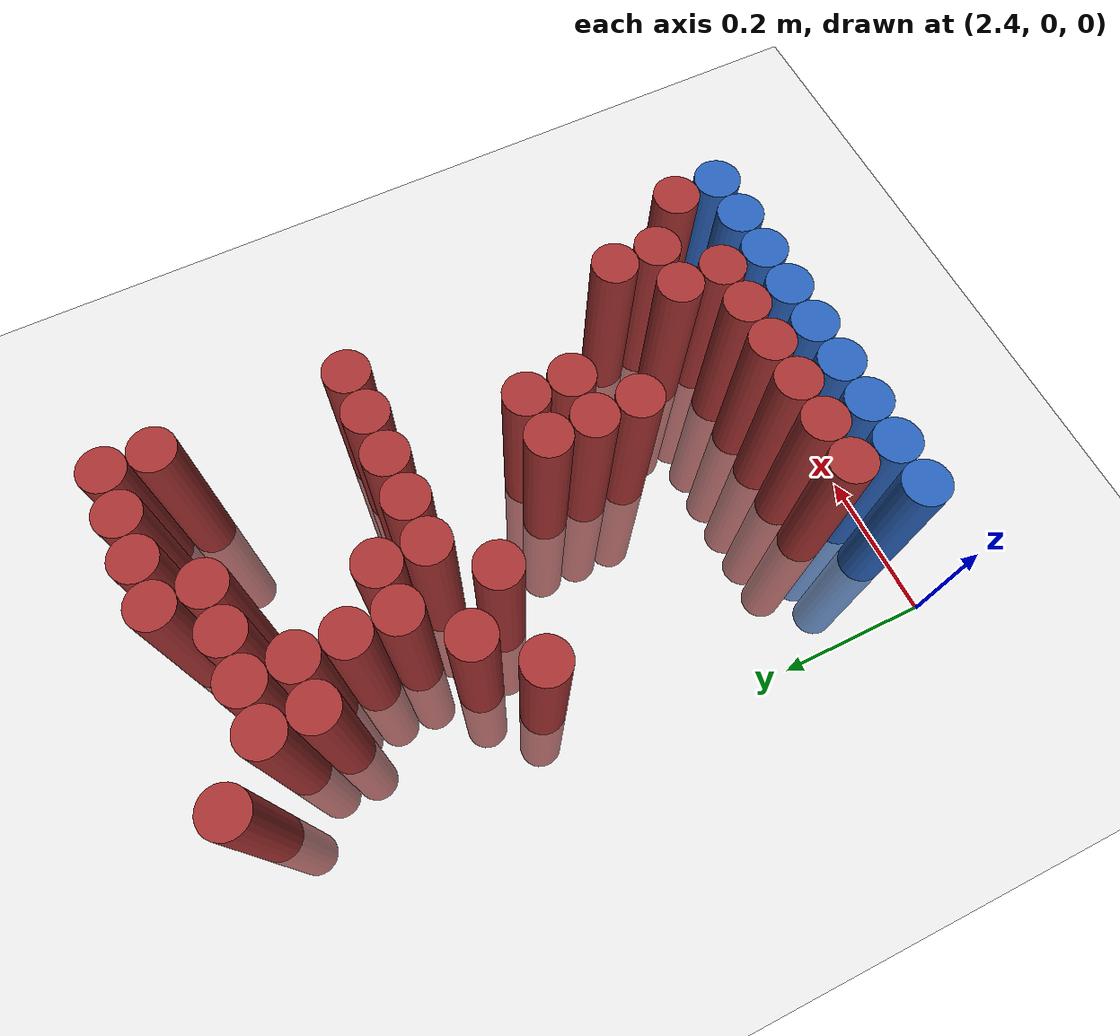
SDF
<sdf version="1.6">
 <world name="default">
  <model name="ground_plane">
   <static>1</static>
   <link name="link">
    <collision name="collision">
     <geometry><plane><normal>0 0 1</normal><size>100 100</size></plane></geometry>
     <surface><friction><ode><mu>100</mu><mu2>50</mu2></ode></friction></surface>
    </collision>
    <visual name="visual">
     <cast_shadows>0</cast_shadows>
     <geometry><plane><normal>0 0 1</normal><size>100 100</size></plane></geometry>
     <material>
      <script><uri>file://media/materials/scripts/gazebo.material</uri><name>Gazebo/Grey</name></script>
     </material>
    </visual>
   </link>
  </model>
  <model name="unit_cylinder_216">
   <static>1</static>
   <pose>2.490000 0.870000 0.000000 0.000000 0.000000 0.000000</pose>
   <link name="link">
    <inertial>
     <mass>1</mass>
     <inertia><ixx>0.145833</ixx><ixy>0</ixy><ixz>0</ixz><iyy>0.145833</iyy><iyz>0</iyz><izz>0.125</izz></inertia>
    </inertial>
    <collision name="collision">
     <geometry><cylinder><radius>0.030000</radius><length>0.5</length></cylinder></geometry>
    </collision>
    <visual name="visual">
     <geometry><cylinder><radius>0.030000</radius><length>0.5</length></cylinder></geometry>
     <material>
      <ambient>0.648000 0.192000 0.192000 1</ambient>
      <diffuse>0.648000 0.192000 0.192000 1</diffuse>
     </material>
     <material>
      <script><name>Gazebo/Grey</name><uri>file://media/materials/scripts/gazebo.material</uri></script>
     </material>
    </visual>
   </link>
  </model>
  <model name="unit_cylinder_217">
   <static>1</static>
   <pose>2.730000 0.870000 0.000000 0.000000 0.000000 0.000000</pose>
   <link name="link">
    <inertial>
     <mass>1</mass>
     <inertia><ixx>0.145833</ixx><ixy>0</ixy><ixz>0</ixz><iyy>0.145833</iyy><iyz>0</iyz><izz>0.125</izz></inertia>
    </inertial>
    <collision name="collision">
     <geometry><cylinder><radius>0.030000</radius><length>0.5</length></cylinder></geometry>
    </collision>
    <visual name="visual">
     <geometry><cylinder><radius>0.030000</radius><length>0.5</length></cylinder></geometry>
     <material>
      <ambient>0.648000 0.192000 0.192000 1</ambient>
      <diffuse>0.648000 0.192000 0.192000 1</diffuse>
     </material>
     <material>
      <script><name>Gazebo/Grey</name><uri>file://media/materials/scripts/gazebo.material</uri></script>
     </material>
    </visual>
   </link>
  </model>
  <model name="unit_cylinder_218">
   <static>1</static>
   <pose>2.790000 0.870000 0.000000 0.000000 0.000000 0.000000</pose>
   <link name="link">
    <inertial>
     <mass>1</mass>
     <inertia><ixx>0.145833</ixx><ixy>0</ixy><ixz>0</ixz><iyy>0.145833</iyy><iyz>0</iyz><izz>0.125</izz></inertia>
    </inertial>
    <collision name="collision">
     <geometry><cylinder><radius>0.030000</radius><length>0.5</length></cylinder></geometry>
    </collision>
    <visual name="visual">
     <geometry><cylinder><radius>0.030000</radius><length>0.5</length></cylinder></geometry>
     <material>
      <ambient>0.648000 0.192000 0.192000 1</ambient>
      <diffuse>0.648000 0.192000 0.192000 1</diffuse>
     </material>
     <material>
      <script><name>Gazebo/Grey</name><uri>file://media/materials/scripts/gazebo.material</uri></script>
     </material>
    </visual>
   </link>
  </model>
  <model name="unit_cylinder_219">
   <static>1</static>
   <pose>2.850000 0.870000 0.000000 0.000000 0.000000 0.000000</pose>
   <link name="link">
    <inertial>
     <mass>1</mass>
     <inertia><ixx>0.145833</ixx><ixy>0</ixy><ixz>0</ixz><iyy>0.145833</iyy><iyz>0</iyz><izz>0.125</izz></inertia>
    </inertial>
    <collision name="collision">
     <geometry><cylinder><radius>0.030000</radius><length>0.5</length></cylinder></geometry>
    </collision>
    <visual name="visual">
     <geometry><cylinder><radius>0.030000</radius><length>0.5</length></cylinder></geometry>
     <material>
      <ambient>0.648000 0.192000 0.192000 1</ambient>
      <diffuse>0.648000 0.192000 0.192000 1</diffuse>
     </material>
     <material>
      <script><name>Gazebo/Grey</name><uri>file://media/materials/scripts/gazebo.material</uri></script>
     </material>
    </visual>
   </link>
  </model>
  <model name="unit_cylinder_220">
   <static>1</static>
   <pose>2.910000 0.870000 0.000000 0.000000 0.000000 0.000000</pose>
   <link name="link">
    <inertial>
     <mass>1</mass>
     <inertia><ixx>0.145833</ixx><ixy>0</ixy><ixz>0</ixz><iyy>0.145833</iyy><iyz>0</iyz><izz>0.125</izz></inertia>
    </inertial>
    <collision name="collision">
     <geometry><cylinder><radius>0.030000</radius><length>0.5</length></cylinder></geometry>
    </collision>
    <visual name="visual">
     <geometry><cylinder><radius>0.030000</radius><length>0.5</length></cylinder></geometry>
     <material>
      <ambient>0.648000 0.192000 0.192000 1</ambient>
      <diffuse>0.648000 0.192000 0.192000 1</diffuse>
     </material>
     <material>
      <script><name>Gazebo/Grey</name><uri>file://media/materials/scripts/gazebo.material</uri></script>
     </material>
    </visual>
   </link>
  </model>
  <model name="unit_cylinder_230">
   <static>1</static>
   <pose>2.550000 0.810000 0.000000 0.000000 0.000000 0.000000</pose>
   <link name="link">
    <inertial>
     <mass>1</mass>
     <inertia><ixx>0.145833</ixx><ixy>0</ixy><ixz>0</ixz><iyy>0.145833</iyy><iyz>0</iyz><izz>0.125</izz></inertia>
    </inertial>
    <collision name="collision">
     <geometry><cylinder><radius>0.030000</radius><length>0.5</length></cylinder></geometry>
    </collision>
    <visual name="visual">
     <geometry><cylinder><radius>0.030000</radius><length>0.5</length></cylinder></geometry>
     <material>
      <ambient>0.648000 0.192000 0.192000 1</ambient>
      <diffuse>0.648000 0.192000 0.192000 1</diffuse>
     </material>
     <material>
      <script><name>Gazebo/Grey</name><uri>file://media/materials/scripts/gazebo.material</uri></script>
     </material>
    </visual>
   </link>
  </model>
  <model name="unit_cylinder_231">
   <static>1</static>
   <pose>2.610000 0.810000 0.000000 0.000000 0.000000 0.000000</pose>
   <link name="link">
    <inertial>
     <mass>1</mass>
     <inertia><ixx>0.145833</ixx><ixy>0</ixy><ixz>0</ixz><iyy>0.145833</iyy><iyz>0</iyz><izz>0.125</izz></inertia>
    </inertial>
    <collision name="collision">
     <geometry><cylinder><radius>0.030000</radius><length>0.5</length></cylinder></geometry>
    </collision>
    <visual name="visual">
     <geometry><cylinder><radius>0.030000</radius><length>0.5</length></cylinder></geometry>
     <material>
      <ambient>0.648000 0.192000 0.192000 1</ambient>
      <diffuse>0.648000 0.192000 0.192000 1</diffuse>
     </material>
     <material>
      <script><name>Gazebo/Grey</name><uri>file://media/materials/scripts/gazebo.material</uri></script>
     </material>
    </visual>
   </link>
  </model>
  <model name="unit_cylinder_232">
   <static>1</static>
   <pose>2.670000 0.810000 0.000000 0.000000 0.000000 0.000000</pose>
   <link name="link">
    <inertial>
     <mass>1</mass>
     <inertia><ixx>0.145833</ixx><ixy>0</ixy><ixz>0</ixz><iyy>0.145833</iyy><iyz>0</iyz><izz>0.125</izz></inertia>
    </inertial>
    <collision name="collision">
     <geometry><cylinder><radius>0.030000</radius><length>0.5</length></cylinder></geometry>
    </collision>
    <visual name="visual">
     <geometry><cylinder><radius>0.030000</radius><length>0.5</length></cylinder></geometry>
     <material>
      <ambient>0.648000 0.192000 0.192000 1</ambient>
      <diffuse>0.648000 0.192000 0.192000 1</diffuse>
     </material>
     <material>
      <script><name>Gazebo/Grey</name><uri>file://media/materials/scripts/gazebo.material</uri></script>
     </material>
    </visual>
   </link>
  </model>
  <model name="unit_cylinder_233">
   <static>1</static>
   <pose>2.730000 0.810000 0.000000 0.000000 0.000000 0.000000</pose>
   <link name="link">
    <inertial>
     <mass>1</mass>
     <inertia><ixx>0.145833</ixx><ixy>0</ixy><ixz>0</ixz><iyy>0.145833</iyy><iyz>0</iyz><izz>0.125</izz></inertia>
    </inertial>
    <collision name="collision">
     <geometry><cylinder><radius>0.030000</radius><length>0.5</length></cylinder></geometry>
    </collision>
    <visual name="visual">
     <geometry><cylinder><radius>0.030000</radius><length>0.5</length></cylinder></geometry>
     <material>
      <ambient>0.648000 0.192000 0.192000 1</ambient>
      <diffuse>0.648000 0.192000 0.192000 1</diffuse>
     </material>
     <material>
      <script><name>Gazebo/Grey</name><uri>file://media/materials/scripts/gazebo.material</uri></script>
     </material>
    </visual>
   </link>
  </model>
  <model name="unit_cylinder_234">
   <static>1</static>
   <pose>2.910000 0.810000 0.000000 0.000000 0.000000 0.000000</pose>
   <link name="link">
    <inertial>
     <mass>1</mass>
     <inertia><ixx>0.145833</ixx><ixy>0</ixy><ixz>0</ixz><iyy>0.145833</iyy><iyz>0</iyz><izz>0.125</izz></inertia>
    </inertial>
    <collision name="collision">
     <geometry><cylinder><radius>0.030000</radius><length>0.5</length></cylinder></geometry>
    </collision>
    <visual name="visual">
     <geometry><cylinder><radius>0.030000</radius><length>0.5</length></cylinder></geometry>
     <material>
      <ambient>0.648000 0.192000 0.192000 1</ambient>
      <diffuse>0.648000 0.192000 0.192000 1</diffuse>
     </material>
     <material>
      <script><name>Gazebo/Grey</name><uri>file://media/materials/scripts/gazebo.material</uri></script>
     </material>
    </visual>
   </link>
  </model>
  <model name="unit_cylinder_239">
   <static>1</static>
   <pose>2.550000 0.750000 0.000000 0.000000 0.000000 0.000000</pose>
   <link name="link">
    <inertial>
     <mass>1</mass>
     <inertia><ixx>0.145833</ixx><ixy>0</ixy><ixz>0</ixz><iyy>0.145833</iyy><iyz>0</iyz><izz>0.125</izz></inertia>
    </inertial>
    <collision name="collision">
     <geometry><cylinder><radius>0.030000</radius><length>0.5</length></cylinder></geometry>
    </collision>
    <visual name="visual">
     <geometry><cylinder><radius>0.030000</radius><length>0.5</length></cylinder></geometry>
     <material>
      <ambient>0.648000 0.192000 0.192000 1</ambient>
      <diffuse>0.648000 0.192000 0.192000 1</diffuse>
     </material>
     <material>
      <script><name>Gazebo/Grey</name><uri>file://media/materials/scripts/gazebo.material</uri></script>
     </material>
    </visual>
   </link>
  </model>
  <model name="unit_cylinder_240">
   <static>1</static>
   <pose>2.610000 0.750000 0.000000 0.000000 0.000000 0.000000</pose>
   <link name="link">
    <inertial>
     <mass>1</mass>
     <inertia><ixx>0.145833</ixx><ixy>0</ixy><ixz>0</ixz><iyy>0.145833</iyy><iyz>0</iyz><izz>0.125</izz></inertia>
    </inertial>
    <collision name="collision">
     <geometry><cylinder><radius>0.030000</radius><length>0.5</length></cylinder></geometry>
    </collision>
    <visual name="visual">
     <geometry><cylinder><radius>0.030000</radius><length>0.5</length></cylinder></geometry>
     <material>
      <ambient>0.648000 0.192000 0.192000 1</ambient>
      <diffuse>0.648000 0.192000 0.192000 1</diffuse>
     </material>
     <material>
      <script><name>Gazebo/Grey</name><uri>file://media/materials/scripts/gazebo.material</uri></script>
     </material>
    </visual>
   </link>
  </model>
  <model name="unit_cylinder_244">
   <static>1</static>
   <pose>2.610000 0.690000 0.000000 0.000000 0.000000 0.000000</pose>
   <link name="link">
    <inertial>
     <mass>1</mass>
     <inertia><ixx>0.145833</ixx><ixy>0</ixy><ixz>0</ixz><iyy>0.145833</iyy><iyz>0</iyz><izz>0.125</izz></inertia>
    </inertial>
    <collision name="collision">
     <geometry><cylinder><radius>0.030000</radius><length>0.5</length></cylinder></geometry>
    </collision>
    <visual name="visual">
     <geometry><cylinder><radius>0.030000</radius><length>0.5</length></cylinder></geometry>
     <material>
      <ambient>0.648000 0.192000 0.192000 1</ambient>
      <diffuse>0.648000 0.192000 0.192000 1</diffuse>
     </material>
     <material>
      <script><name>Gazebo/Grey</name><uri>file://media/materials/scripts/gazebo.material</uri></script>
     </material>
    </visual>
   </link>
  </model>
  <model name="unit_cylinder_246">
   <static>1</static>
   <pose>2.610000 0.630000 0.000000 0.000000 0.000000 0.000000</pose>
   <link name="link">
    <inertial>
     <mass>1</mass>
     <inertia><ixx>0.145833</ixx><ixy>0</ixy><ixz>0</ixz><iyy>0.145833</iyy><iyz>0</iyz><izz>0.125</izz></inertia>
    </inertial>
    <collision name="collision">
     <geometry><cylinder><radius>0.030000</radius><length>0.5</length></cylinder></geometry>
    </collision>
    <visual name="visual">
     <geometry><cylinder><radius>0.030000</radius><length>0.5</length></cylinder></geometry>
     <material>
      <ambient>0.648000 0.192000 0.192000 1</ambient>
      <diffuse>0.648000 0.192000 0.192000 1</diffuse>
     </material>
     <material>
      <script><name>Gazebo/Grey</name><uri>file://media/materials/scripts/gazebo.material</uri></script>
     </material>
    </visual>
   </link>
  </model>
  <model name="unit_cylinder_247">
   <static>1</static>
   <pose>2.670000 0.630000 0.000000 0.000000 0.000000 0.000000</pose>
   <link name="link">
    <inertial>
     <mass>1</mass>
     <inertia><ixx>0.145833</ixx><ixy>0</ixy><ixz>0</ixz><iyy>0.145833</iyy><iyz>0</iyz><izz>0.125</izz></inertia>
    </inertial>
    <collision name="collision">
     <geometry><cylinder><radius>0.030000</radius><length>0.5</length></cylinder></geometry>
    </collision>
    <visual name="visual">
     <geometry><cylinder><radius>0.030000</radius><length>0.5</length></cylinder></geometry>
     <material>
      <ambient>0.648000 0.192000 0.192000 1</ambient>
      <diffuse>0.648000 0.192000 0.192000 1</diffuse>
     </material>
     <material>
      <script><name>Gazebo/Grey</name><uri>file://media/materials/scripts/gazebo.material</uri></script>
     </material>
    </visual>
   </link>
  </model>
  <model name="unit_cylinder_250">
   <static>1</static>
   <pose>2.550000 0.570000 0.000000 0.000000 0.000000 0.000000</pose>
   <link name="link">
    <inertial>
     <mass>1</mass>
     <inertia><ixx>0.145833</ixx><ixy>0</ixy><ixz>0</ixz><iyy>0.145833</iyy><iyz>0</iyz><izz>0.125</izz></inertia>
    </inertial>
    <collision name="collision">
     <geometry><cylinder><radius>0.030000</radius><length>0.5</length></cylinder></geometry>
    </collision>
    <visual name="visual">
     <geometry><cylinder><radius>0.030000</radius><length>0.5</length></cylinder></geometry>
     <material>
      <ambient>0.648000 0.192000 0.192000 1</ambient>
      <diffuse>0.648000 0.192000 0.192000 1</diffuse>
     </material>
     <material>
      <script><name>Gazebo/Grey</name><uri>file://media/materials/scripts/gazebo.material</uri></script>
     </material>
    </visual>
   </link>
  </model>
  <model name="unit_cylinder_251">
   <static>1</static>
   <pose>2.670000 0.570000 0.000000 0.000000 0.000000 0.000000</pose>
   <link name="link">
    <inertial>
     <mass>1</mass>
     <inertia><ixx>0.145833</ixx><ixy>0</ixy><ixz>0</ixz><iyy>0.145833</iyy><iyz>0</iyz><izz>0.125</izz></inertia>
    </inertial>
    <collision name="collision">
     <geometry><cylinder><radius>0.030000</radius><length>0.5</length></cylinder></geometry>
    </collision>
    <visual name="visual">
     <geometry><cylinder><radius>0.030000</radius><length>0.5</length></cylinder></geometry>
     <material>
      <ambient>0.648000 0.192000 0.192000 1</ambient>
      <diffuse>0.648000 0.192000 0.192000 1</diffuse>
     </material>
     <material>
      <script><name>Gazebo/Grey</name><uri>file://media/materials/scripts/gazebo.material</uri></script>
     </material>
    </visual>
   </link>
  </model>
  <model name="unit_cylinder_252">
   <static>1</static>
   <pose>2.730000 0.570000 0.000000 0.000000 0.000000 0.000000</pose>
   <link name="link">
    <inertial>
     <mass>1</mass>
     <inertia><ixx>0.145833</ixx><ixy>0</ixy><ixz>0</ixz><iyy>0.145833</iyy><iyz>0</iyz><izz>0.125</izz></inertia>
    </inertial>
    <collision name="collision">
     <geometry><cylinder><radius>0.030000</radius><length>0.5</length></cylinder></geometry>
    </collision>
    <visual name="visual">
     <geometry><cylinder><radius>0.030000</radius><length>0.5</length></cylinder></geometry>
     <material>
      <ambient>0.648000 0.192000 0.192000 1</ambient>
      <diffuse>0.648000 0.192000 0.192000 1</diffuse>
     </material>
     <material>
      <script><name>Gazebo/Grey</name><uri>file://media/materials/scripts/gazebo.material</uri></script>
     </material>
    </visual>
   </link>
  </model>
  <model name="unit_cylinder_253">
   <static>1</static>
   <pose>2.790000 0.570000 0.000000 0.000000 0.000000 0.000000</pose>
   <link name="link">
    <inertial>
     <mass>1</mass>
     <inertia><ixx>0.145833</ixx><ixy>0</ixy><ixz>0</ixz><iyy>0.145833</iyy><iyz>0</iyz><izz>0.125</izz></inertia>
    </inertial>
    <collision name="collision">
     <geometry><cylinder><radius>0.030000</radius><length>0.5</length></cylinder></geometry>
    </collision>
    <visual name="visual">
     <geometry><cylinder><radius>0.030000</radius><length>0.5</length></cylinder></geometry>
     <material>
      <ambient>0.648000 0.192000 0.192000 1</ambient>
      <diffuse>0.648000 0.192000 0.192000 1</diffuse>
     </material>
     <material>
      <script><name>Gazebo/Grey</name><uri>file://media/materials/scripts/gazebo.material</uri></script>
     </material>
    </visual>
   </link>
  </model>
  <model name="unit_cylinder_254">
   <static>1</static>
   <pose>2.850000 0.570000 0.000000 0.000000 0.000000 0.000000</pose>
   <link name="link">
    <inertial>
     <mass>1</mass>
     <inertia><ixx>0.145833</ixx><ixy>0</ixy><ixz>0</ixz><iyy>0.145833</iyy><iyz>0</iyz><izz>0.125</izz></inertia>
    </inertial>
    <collision name="collision">
     <geometry><cylinder><radius>0.030000</radius><length>0.5</length></cylinder></geometry>
    </collision>
    <visual name="visual">
     <geometry><cylinder><radius>0.030000</radius><length>0.5</length></cylinder></geometry>
     <material>
      <ambient>0.648000 0.192000 0.192000 1</ambient>
      <diffuse>0.648000 0.192000 0.192000 1</diffuse>
     </material>
     <material>
      <script><name>Gazebo/Grey</name><uri>file://media/materials/scripts/gazebo.material</uri></script>
     </material>
    </visual>
   </link>
  </model>
  <model name="unit_cylinder_255">
   <static>1</static>
   <pose>2.910000 0.570000 0.000000 0.000000 0.000000 0.000000</pose>
   <link name="link">
    <inertial>
     <mass>1</mass>
     <inertia><ixx>0.145833</ixx><ixy>0</ixy><ixz>0</ixz><iyy>0.145833</iyy><iyz>0</iyz><izz>0.125</izz></inertia>
    </inertial>
    <collision name="collision">
     <geometry><cylinder><radius>0.030000</radius><length>0.5</length></cylinder></geometry>
    </collision>
    <visual name="visual">
     <geometry><cylinder><radius>0.030000</radius><length>0.5</length></cylinder></geometry>
     <material>
      <ambient>0.648000 0.192000 0.192000 1</ambient>
      <diffuse>0.648000 0.192000 0.192000 1</diffuse>
     </material>
     <material>
      <script><name>Gazebo/Grey</name><uri>file://media/materials/scripts/gazebo.material</uri></script>
     </material>
    </visual>
   </link>
  </model>
  <model name="unit_cylinder_260">
   <static>1</static>
   <pose>2.490000 0.510000 0.000000 0.000000 0.000000 0.000000</pose>
   <link name="link">
    <inertial>
     <mass>1</mass>
     <inertia><ixx>0.145833</ixx><ixy>0</ixy><ixz>0</ixz><iyy>0.145833</iyy><iyz>0</iyz><izz>0.125</izz></inertia>
    </inertial>
    <collision name="collision">
     <geometry><cylinder><radius>0.030000</radius><length>0.5</length></cylinder></geometry>
    </collision>
    <visual name="visual">
     <geometry><cylinder><radius>0.030000</radius><length>0.5</length></cylinder></geometry>
     <material>
      <ambient>0.648000 0.192000 0.192000 1</ambient>
      <diffuse>0.648000 0.192000 0.192000 1</diffuse>
     </material>
     <material>
      <script><name>Gazebo/Grey</name><uri>file://media/materials/scripts/gazebo.material</uri></script>
     </material>
    </visual>
   </link>
  </model>
  <model name="unit_cylinder_261">
   <static>1</static>
   <pose>2.610000 0.510000 0.000000 0.000000 0.000000 0.000000</pose>
   <link name="link">
    <inertial>
     <mass>1</mass>
     <inertia><ixx>0.145833</ixx><ixy>0</ixy><ixz>0</ixz><iyy>0.145833</iyy><iyz>0</iyz><izz>0.125</izz></inertia>
    </inertial>
    <collision name="collision">
     <geometry><cylinder><radius>0.030000</radius><length>0.5</length></cylinder></geometry>
    </collision>
    <visual name="visual">
     <geometry><cylinder><radius>0.030000</radius><length>0.5</length></cylinder></geometry>
     <material>
      <ambient>0.648000 0.192000 0.192000 1</ambient>
      <diffuse>0.648000 0.192000 0.192000 1</diffuse>
     </material>
     <material>
      <script><name>Gazebo/Grey</name><uri>file://media/materials/scripts/gazebo.material</uri></script>
     </material>
    </visual>
   </link>
  </model>
  <model name="unit_cylinder_270">
   <static>1</static>
   <pose>2.730000 0.390000 0.000000 0.000000 0.000000 0.000000</pose>
   <link name="link">
    <inertial>
     <mass>1</mass>
     <inertia><ixx>0.145833</ixx><ixy>0</ixy><ixz>0</ixz><iyy>0.145833</iyy><iyz>0</iyz><izz>0.125</izz></inertia>
    </inertial>
    <collision name="collision">
     <geometry><cylinder><radius>0.030000</radius><length>0.5</length></cylinder></geometry>
    </collision>
    <visual name="visual">
     <geometry><cylinder><radius>0.030000</radius><length>0.5</length></cylinder></geometry>
     <material>
      <ambient>0.648000 0.192000 0.192000 1</ambient>
      <diffuse>0.648000 0.192000 0.192000 1</diffuse>
     </material>
     <material>
      <script><name>Gazebo/Grey</name><uri>file://media/materials/scripts/gazebo.material</uri></script>
     </material>
    </visual>
   </link>
  </model>
  <model name="unit_cylinder_271">
   <static>1</static>
   <pose>2.790000 0.390000 0.000000 0.000000 0.000000 0.000000</pose>
   <link name="link">
    <inertial>
     <mass>1</mass>
     <inertia><ixx>0.145833</ixx><ixy>0</ixy><ixz>0</ixz><iyy>0.145833</iyy><iyz>0</iyz><izz>0.125</izz></inertia>
    </inertial>
    <collision name="collision">
     <geometry><cylinder><radius>0.030000</radius><length>0.5</length></cylinder></geometry>
    </collision>
    <visual name="visual">
     <geometry><cylinder><radius>0.030000</radius><length>0.5</length></cylinder></geometry>
     <material>
      <ambient>0.648000 0.192000 0.192000 1</ambient>
      <diffuse>0.648000 0.192000 0.192000 1</diffuse>
     </material>
     <material>
      <script><name>Gazebo/Grey</name><uri>file://media/materials/scripts/gazebo.material</uri></script>
     </material>
    </visual>
   </link>
  </model>
  <model name="unit_cylinder_273">
   <static>1</static>
   <pose>2.730000 0.330000 0.000000 0.000000 0.000000 0.000000</pose>
   <link name="link">
    <inertial>
     <mass>1</mass>
     <inertia><ixx>0.145833</ixx><ixy>0</ixy><ixz>0</ixz><iyy>0.145833</iyy><iyz>0</iyz><izz>0.125</izz></inertia>
    </inertial>
    <collision name="collision">
     <geometry><cylinder><radius>0.030000</radius><length>0.5</length></cylinder></geometry>
    </collision>
    <visual name="visual">
     <geometry><cylinder><radius>0.030000</radius><length>0.5</length></cylinder></geometry>
     <material>
      <ambient>0.648000 0.192000 0.192000 1</ambient>
      <diffuse>0.648000 0.192000 0.192000 1</diffuse>
     </material>
     <material>
      <script><name>Gazebo/Grey</name><uri>file://media/materials/scripts/gazebo.material</uri></script>
     </material>
    </visual>
   </link>
  </model>
  <model name="unit_cylinder_274">
   <static>1</static>
   <pose>2.790000 0.330000 0.000000 0.000000 0.000000 0.000000</pose>
   <link name="link">
    <inertial>
     <mass>1</mass>
     <inertia><ixx>0.145833</ixx><ixy>0</ixy><ixz>0</ixz><iyy>0.145833</iyy><iyz>0</iyz><izz>0.125</izz></inertia>
    </inertial>
    <collision name="collision">
     <geometry><cylinder><radius>0.030000</radius><length>0.5</length></cylinder></geometry>
    </collision>
    <visual name="visual">
     <geometry><cylinder><radius>0.030000</radius><length>0.5</length></cylinder></geometry>
     <material>
      <ambient>0.648000 0.192000 0.192000 1</ambient>
      <diffuse>0.648000 0.192000 0.192000 1</diffuse>
     </material>
     <material>
      <script><name>Gazebo/Grey</name><uri>file://media/materials/scripts/gazebo.material</uri></script>
     </material>
    </visual>
   </link>
  </model>
  <model name="unit_cylinder_277">
   <static>1</static>
   <pose>2.730000 0.270000 0.000000 0.000000 0.000000 0.000000</pose>
   <link name="link">
    <inertial>
     <mass>1</mass>
     <inertia><ixx>0.145833</ixx><ixy>0</ixy><ixz>0</ixz><iyy>0.145833</iyy><iyz>0</iyz><izz>0.125</izz></inertia>
    </inertial>
    <collision name="collision">
     <geometry><cylinder><radius>0.030000</radius><length>0.5</length></cylinder></geometry>
    </collision>
    <visual name="visual">
     <geometry><cylinder><radius>0.030000</radius><length>0.5</length></cylinder></geometry>
     <material>
      <ambient>0.648000 0.192000 0.192000 1</ambient>
      <diffuse>0.648000 0.192000 0.192000 1</diffuse>
     </material>
     <material>
      <script><name>Gazebo/Grey</name><uri>file://media/materials/scripts/gazebo.material</uri></script>
     </material>
    </visual>
   </link>
  </model>
  <model name="unit_cylinder_281">
   <static>1</static>
   <pose>2.910000 0.210000 0.000000 0.000000 0.000000 0.000000</pose>
   <link name="link">
    <inertial>
     <mass>1</mass>
     <inertia><ixx>0.145833</ixx><ixy>0</ixy><ixz>0</ixz><iyy>0.145833</iyy><iyz>0</iyz><izz>0.125</izz></inertia>
    </inertial>
    <collision name="collision">
     <geometry><cylinder><radius>0.030000</radius><length>0.5</length></cylinder></geometry>
    </collision>
    <visual name="visual">
     <geometry><cylinder><radius>0.030000</radius><length>0.5</length></cylinder></geometry>
     <material>
      <ambient>0.648000 0.192000 0.192000 1</ambient>
      <diffuse>0.648000 0.192000 0.192000 1</diffuse>
     </material>
     <material>
      <script><name>Gazebo/Grey</name><uri>file://media/materials/scripts/gazebo.material</uri></script>
     </material>
    </visual>
   </link>
  </model>
  <model name="unit_cylinder_284">
   <static>1</static>
   <pose>2.850000 0.150000 0.000000 0.000000 0.000000 0.000000</pose>
   <link name="link">
    <inertial>
     <mass>1</mass>
     <inertia><ixx>0.145833</ixx><ixy>0</ixy><ixz>0</ixz><iyy>0.145833</iyy><iyz>0</iyz><izz>0.125</izz></inertia>
    </inertial>
    <collision name="collision">
     <geometry><cylinder><radius>0.030000</radius><length>0.5</length></cylinder></geometry>
    </collision>
    <visual name="visual">
     <geometry><cylinder><radius>0.030000</radius><length>0.5</length></cylinder></geometry>
     <material>
      <ambient>0.648000 0.192000 0.192000 1</ambient>
      <diffuse>0.648000 0.192000 0.192000 1</diffuse>
     </material>
     <material>
      <script><name>Gazebo/Grey</name><uri>file://media/materials/scripts/gazebo.material</uri></script>
     </material>
    </visual>
   </link>
  </model>
  <model name="unit_cylinder_285">
   <static>1</static>
   <pose>2.910000 0.150000 0.000000 0.000000 0.000000 0.000000</pose>
   <link name="link">
    <inertial>
     <mass>1</mass>
     <inertia><ixx>0.145833</ixx><ixy>0</ixy><ixz>0</ixz><iyy>0.145833</iyy><iyz>0</iyz><izz>0.125</izz></inertia>
    </inertial>
    <collision name="collision">
     <geometry><cylinder><radius>0.030000</radius><length>0.5</length></cylinder></geometry>
    </collision>
    <visual name="visual">
     <geometry><cylinder><radius>0.030000</radius><length>0.5</length></cylinder></geometry>
     <material>
      <ambient>0.648000 0.192000 0.192000 1</ambient>
      <diffuse>0.648000 0.192000 0.192000 1</diffuse>
     </material>
     <material>
      <script><name>Gazebo/Grey</name><uri>file://media/materials/scripts/gazebo.material</uri></script>
     </material>
    </visual>
   </link>
  </model>
  <model name="unit_cylinder_292">
   <static>1</static>
   <pose>2.550000 0.090000 0.000000 0.000000 0.000000 0.000000</pose>
   <link name="link">
    <inertial>
     <mass>1</mass>
     <inertia><ixx>0.145833</ixx><ixy>0</ixy><ixz>0</ixz><iyy>0.145833</iyy><iyz>0</iyz><izz>0.125</izz></inertia>
    </inertial>
    <collision name="collision">
     <geometry><cylinder><radius>0.030000</radius><length>0.5</length></cylinder></geometry>
    </collision>
    <visual name="visual">
     <geometry><cylinder><radius>0.030000</radius><length>0.5</length></cylinder></geometry>
     <material>
      <ambient>0.648000 0.192000 0.192000 1</ambient>
      <diffuse>0.648000 0.192000 0.192000 1</diffuse>
     </material>
     <material>
      <script><name>Gazebo/Grey</name><uri>file://media/materials/scripts/gazebo.material</uri></script>
     </material>
    </visual>
   </link>
  </model>
  <model name="unit_cylinder_293">
   <static>1</static>
   <pose>2.610000 0.090000 0.000000 0.000000 0.000000 0.000000</pose>
   <link name="link">
    <inertial>
     <mass>1</mass>
     <inertia><ixx>0.145833</ixx><ixy>0</ixy><ixz>0</ixz><iyy>0.145833</iyy><iyz>0</iyz><izz>0.125</izz></inertia>
    </inertial>
    <collision name="collision">
     <geometry><cylinder><radius>0.030000</radius><length>0.5</length></cylinder></geometry>
    </collision>
    <visual name="visual">
     <geometry><cylinder><radius>0.030000</radius><length>0.5</length></cylinder></geometry>
     <material>
      <ambient>0.648000 0.192000 0.192000 1</ambient>
      <diffuse>0.648000 0.192000 0.192000 1</diffuse>
     </material>
     <material>
      <script><name>Gazebo/Grey</name><uri>file://media/materials/scripts/gazebo.material</uri></script>
     </material>
    </visual>
   </link>
  </model>
  <model name="unit_cylinder_294">
   <static>1</static>
   <pose>2.670000 0.090000 0.000000 0.000000 0.000000 0.000000</pose>
   <link name="link">
    <inertial>
     <mass>1</mass>
     <inertia><ixx>0.145833</ixx><ixy>0</ixy><ixz>0</ixz><iyy>0.145833</iyy><iyz>0</iyz><izz>0.125</izz></inertia>
    </inertial>
    <collision name="collision">
     <geometry><cylinder><radius>0.030000</radius><length>0.5</length></cylinder></geometry>
    </collision>
    <visual name="visual">
     <geometry><cylinder><radius>0.030000</radius><length>0.5</length></cylinder></geometry>
     <material>
      <ambient>0.648000 0.192000 0.192000 1</ambient>
      <diffuse>0.648000 0.192000 0.192000 1</diffuse>
     </material>
     <material>
      <script><name>Gazebo/Grey</name><uri>file://media/materials/scripts/gazebo.material</uri></script>
     </material>
    </visual>
   </link>
  </model>
  <model name="unit_cylinder_295">
   <static>1</static>
   <pose>2.730000 0.090000 0.000000 0.000000 0.000000 0.000000</pose>
   <link name="link">
    <inertial>
     <mass>1</mass>
     <inertia><ixx>0.145833</ixx><ixy>0</ixy><ixz>0</ixz><iyy>0.145833</iyy><iyz>0</iyz><izz>0.125</izz></inertia>
    </inertial>
    <collision name="collision">
     <geometry><cylinder><radius>0.030000</radius><length>0.5</length></cylinder></geometry>
    </collision>
    <visual name="visual">
     <geometry><cylinder><radius>0.030000</radius><length>0.5</length></cylinder></geometry>
     <material>
      <ambient>0.648000 0.192000 0.192000 1</ambient>
      <diffuse>0.648000 0.192000 0.192000 1</diffuse>
     </material>
     <material>
      <script><name>Gazebo/Grey</name><uri>file://media/materials/scripts/gazebo.material</uri></script>
     </material>
    </visual>
   </link>
  </model>
  <model name="unit_cylinder_296">
   <static>1</static>
   <pose>2.790000 0.090000 0.000000 0.000000 0.000000 0.000000</pose>
   <link name="link">
    <inertial>
     <mass>1</mass>
     <inertia><ixx>0.145833</ixx><ixy>0</ixy><ixz>0</ixz><iyy>0.145833</iyy><iyz>0</iyz><izz>0.125</izz></inertia>
    </inertial>
    <collision name="collision">
     <geometry><cylinder><radius>0.030000</radius><length>0.5</length></cylinder></geometry>
    </collision>
    <visual name="visual">
     <geometry><cylinder><radius>0.030000</radius><length>0.5</length></cylinder></geometry>
     <material>
      <ambient>0.648000 0.192000 0.192000 1</ambient>
      <diffuse>0.648000 0.192000 0.192000 1</diffuse>
     </material>
     <material>
      <script><name>Gazebo/Grey</name><uri>file://media/materials/scripts/gazebo.material</uri></script>
     </material>
    </visual>
   </link>
  </model>
  <model name="unit_cylinder_297">
   <static>1</static>
   <pose>2.850000 0.090000 0.000000 0.000000 0.000000 0.000000</pose>
   <link name="link">
    <inertial>
     <mass>1</mass>
     <inertia><ixx>0.145833</ixx><ixy>0</ixy><ixz>0</ixz><iyy>0.145833</iyy><iyz>0</iyz><izz>0.125</izz></inertia>
    </inertial>
    <collision name="collision">
     <geometry><cylinder><radius>0.030000</radius><length>0.5</length></cylinder></geometry>
    </collision>
    <visual name="visual">
     <geometry><cylinder><radius>0.030000</radius><length>0.5</length></cylinder></geometry>
     <material>
      <ambient>0.648000 0.192000 0.192000 1</ambient>
      <diffuse>0.648000 0.192000 0.192000 1</diffuse>
     </material>
     <material>
      <script><name>Gazebo/Grey</name><uri>file://media/materials/scripts/gazebo.material</uri></script>
     </material>
    </visual>
   </link>
  </model>
  <model name="unit_cylinder_298">
   <static>1</static>
   <pose>2.970000 0.090000 0.000000 0.000000 0.000000 0.000000</pose>
   <link name="link">
    <inertial>
     <mass>1</mass>
     <inertia><ixx>0.145833</ixx><ixy>0</ixy><ixz>0</ixz><iyy>0.145833</iyy><iyz>0</iyz><izz>0.125</izz></inertia>
    </inertial>
    <collision name="collision">
     <geometry><cylinder><radius>0.030000</radius><length>0.5</length></cylinder></geometry>
    </collision>
    <visual name="visual">
     <geometry><cylinder><radius>0.030000</radius><length>0.5</length></cylinder></geometry>
     <material>
      <ambient>0.648000 0.192000 0.192000 1</ambient>
      <diffuse>0.648000 0.192000 0.192000 1</diffuse>
     </material>
     <material>
      <script><name>Gazebo/Grey</name><uri>file://media/materials/scripts/gazebo.material</uri></script>
     </material>
    </visual>
   </link>
  </model>
  <model name="unit_cylinder_310">
   <static>1</static>
   <pose>2.490000 0.030000 0.000000 0.000000 0.000000 0.000000</pose>
   <link name="link">
    <inertial>
     <mass>1</mass>
     <inertia><ixx>0.145833</ixx><ixy>0</ixy><ixz>0</ixz><iyy>0.145833</iyy><iyz>0</iyz><izz>0.125</izz></inertia>
    </inertial>
    <collision name="collision">
     <geometry><cylinder><radius>0.030000</radius><length>0.5</length></cylinder></geometry>
    </collision>
    <visual name="visual">
     <geometry><cylinder><radius>0.030000</radius><length>0.5</length></cylinder></geometry>
     <material>
      <ambient>0.152000 0.379000 0.720000 1</ambient>
      <diffuse>0.152000 0.379000 0.720000 1</diffuse>
     </material>
     <material>
      <script><name>Gazebo/Grey</name><uri>file://media/materials/scripts/gazebo.material</uri></script>
     </material>
    </visual>
   </link>
  </model>
  <model name="unit_cylinder_311">
   <static>1</static>
   <pose>2.550000 0.030000 0.000000 0.000000 0.000000 0.000000</pose>
   <link name="link">
    <inertial>
     <mass>1</mass>
     <inertia><ixx>0.145833</ixx><ixy>0</ixy><ixz>0</ixz><iyy>0.145833</iyy><iyz>0</iyz><izz>0.125</izz></inertia>
    </inertial>
    <collision name="collision">
     <geometry><cylinder><radius>0.030000</radius><length>0.5</length></cylinder></geometry>
    </collision>
    <visual name="visual">
     <geometry><cylinder><radius>0.030000</radius><length>0.5</length></cylinder></geometry>
     <material>
      <ambient>0.152000 0.379000 0.720000 1</ambient>
      <diffuse>0.152000 0.379000 0.720000 1</diffuse>
     </material>
     <material>
      <script><name>Gazebo/Grey</name><uri>file://media/materials/scripts/gazebo.material</uri></script>
     </material>
    </visual>
   </link>
  </model>
  <model name="unit_cylinder_312">
   <static>1</static>
   <pose>2.610000 0.030000 0.000000 0.000000 0.000000 0.000000</pose>
   <link name="link">
    <inertial>
     <mass>1</mass>
     <inertia><ixx>0.145833</ixx><ixy>0</ixy><ixz>0</ixz><iyy>0.145833</iyy><iyz>0</iyz><izz>0.125</izz></inertia>
    </inertial>
    <collision name="collision">
     <geometry><cylinder><radius>0.030000</radius><length>0.5</length></cylinder></geometry>
    </collision>
    <visual name="visual">
     <geometry><cylinder><radius>0.030000</radius><length>0.5</length></cylinder></geometry>
     <material>
      <ambient>0.152000 0.379000 0.720000 1</ambient>
      <diffuse>0.152000 0.379000 0.720000 1</diffuse>
     </material>
     <material>
      <script><name>Gazebo/Grey</name><uri>file://media/materials/scripts/gazebo.material</uri></script>
     </material>
    </visual>
   </link>
  </model>
  <model name="unit_cylinder_313">
   <static>1</static>
   <pose>2.670000 0.030000 0.000000 0.000000 0.000000 0.000000</pose>
   <link name="link">
    <inertial>
     <mass>1</mass>
     <inertia><ixx>0.145833</ixx><ixy>0</ixy><ixz>0</ixz><iyy>0.145833</iyy><iyz>0</iyz><izz>0.125</izz></inertia>
    </inertial>
    <collision name="collision">
     <geometry><cylinder><radius>0.030000</radius><length>0.5</length></cylinder></geometry>
    </collision>
    <visual name="visual">
     <geometry><cylinder><radius>0.030000</radius><length>0.5</length></cylinder></geometry>
     <material>
      <ambient>0.152000 0.379000 0.720000 1</ambient>
      <diffuse>0.152000 0.379000 0.720000 1</diffuse>
     </material>
     <material>
      <script><name>Gazebo/Grey</name><uri>file://media/materials/scripts/gazebo.material</uri></script>
     </material>
    </visual>
   </link>
  </model>
  <model name="unit_cylinder_314">
   <static>1</static>
   <pose>2.730000 0.030000 0.000000 0.000000 0.000000 0.000000</pose>
   <link name="link">
    <inertial>
     <mass>1</mass>
     <inertia><ixx>0.145833</ixx><ixy>0</ixy><ixz>0</ixz><iyy>0.145833</iyy><iyz>0</iyz><izz>0.125</izz></inertia>
    </inertial>
    <collision name="collision">
     <geometry><cylinder><radius>0.030000</radius><length>0.5</length></cylinder></geometry>
    </collision>
    <visual name="visual">
     <geometry><cylinder><radius>0.030000</radius><length>0.5</length></cylinder></geometry>
     <material>
      <ambient>0.152000 0.379000 0.720000 1</ambient>
      <diffuse>0.152000 0.379000 0.720000 1</diffuse>
     </material>
     <material>
      <script><name>Gazebo/Grey</name><uri>file://media/materials/scripts/gazebo.material</uri></script>
     </material>
    </visual>
   </link>
  </model>
  <model name="unit_cylinder_315">
   <static>1</static>
   <pose>2.790000 0.030000 0.000000 0.000000 0.000000 0.000000</pose>
   <link name="link">
    <inertial>
     <mass>1</mass>
     <inertia><ixx>0.145833</ixx><ixy>0</ixy><ixz>0</ixz><iyy>0.145833</iyy><iyz>0</iyz><izz>0.125</izz></inertia>
    </inertial>
    <collision name="collision">
     <geometry><cylinder><radius>0.030000</radius><length>0.5</length></cylinder></geometry>
    </collision>
    <visual name="visual">
     <geometry><cylinder><radius>0.030000</radius><length>0.5</length></cylinder></geometry>
     <material>
      <ambient>0.152000 0.379000 0.720000 1</ambient>
      <diffuse>0.152000 0.379000 0.720000 1</diffuse>
     </material>
     <material>
      <script><name>Gazebo/Grey</name><uri>file://media/materials/scripts/gazebo.material</uri></script>
     </material>
    </visual>
   </link>
  </model>
  <model name="unit_cylinder_316">
   <static>1</static>
   <pose>2.850000 0.030000 0.000000 0.000000 0.000000 0.000000</pose>
   <link name="link">
    <inertial>
     <mass>1</mass>
     <inertia><ixx>0.145833</ixx><ixy>0</ixy><ixz>0</ixz><iyy>0.145833</iyy><iyz>0</iyz><izz>0.125</izz></inertia>
    </inertial>
    <collision name="collision">
     <geometry><cylinder><radius>0.030000</radius><length>0.5</length></cylinder></geometry>
    </collision>
    <visual name="visual">
     <geometry><cylinder><radius>0.030000</radius><length>0.5</length></cylinder></geometry>
     <material>
      <ambient>0.152000 0.379000 0.720000 1</ambient>
      <diffuse>0.152000 0.379000 0.720000 1</diffuse>
     </material>
     <material>
      <script><name>Gazebo/Grey</name><uri>file://media/materials/scripts/gazebo.material</uri></script>
     </material>
    </visual>
   </link>
  </model>
  <model name="unit_cylinder_317">
   <static>1</static>
   <pose>2.910000 0.030000 0.000000 0.000000 0.000000 0.000000</pose>
   <link name="link">
    <inertial>
     <mass>1</mass>
     <inertia><ixx>0.145833</ixx><ixy>0</ixy><ixz>0</ixz><iyy>0.145833</iyy><iyz>0</iyz><izz>0.125</izz></inertia>
    </inertial>
    <collision name="collision">
     <geometry><cylinder><radius>0.030000</radius><length>0.5</length></cylinder></geometry>
    </collision>
    <visual name="visual">
     <geometry><cylinder><radius>0.030000</radius><length>0.5</length></cylinder></geometry>
     <material>
      <ambient>0.152000 0.379000 0.720000 1</ambient>
      <diffuse>0.152000 0.379000 0.720000 1</diffuse>
     </material>
     <material>
      <script><name>Gazebo/Grey</name><uri>file://media/materials/scripts/gazebo.material</uri></script>
     </material>
    </visual>
   </link>
  </model>
  <model name="unit_cylinder_318">
   <static>1</static>
   <pose>2.970000 0.030000 0.000000 0.000000 0.000000 0.000000</pose>
   <link name="link">
    <inertial>
     <mass>1</mass>
     <inertia><ixx>0.145833</ixx><ixy>0</ixy><ixz>0</ixz><iyy>0.145833</iyy><iyz>0</iyz><izz>0.125</izz></inertia>
    </inertial>
    <collision name="collision">
     <geometry><cylinder><radius>0.030000</radius><length>0.5</length></cylinder></geometry>
    </collision>
    <visual name="visual">
     <geometry><cylinder><radius>0.030000</radius><length>0.5</length></cylinder></geometry>
     <material>
      <ambient>0.152000 0.379000 0.720000 1</ambient>
      <diffuse>0.152000 0.379000 0.720000 1</diffuse>
     </material>
     <material>
      <script><name>Gazebo/Grey</name><uri>file://media/materials/scripts/gazebo.material</uri></script>
     </material>
    </visual>
   </link>
  </model>
 </world>
</sdf>
